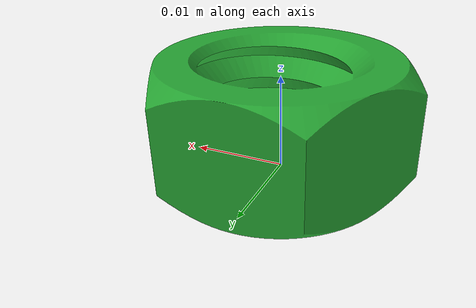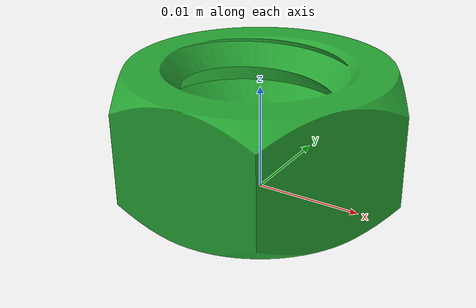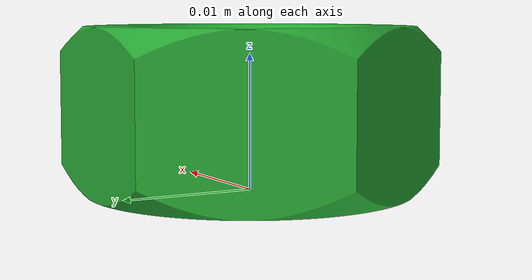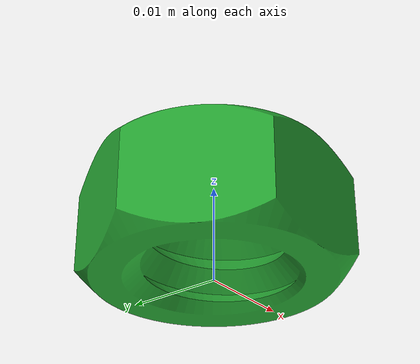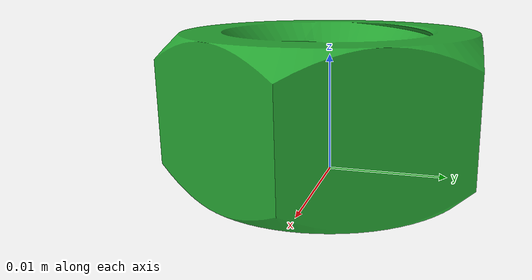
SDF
<?xml version="1.0"?>
<sdf version="1.4">
    <model name="nut_6x9">
        <static>false</static>
        <link name="link">
            <pose>0 0 0 0 0 0</pose>
            <inertial>
                <pose>-4.24534e-05 -6.666e-07 0.0060012716 0 0 0 </pose>
                <mass>3.4719e-06</mass>
                <inertia>
                    <ixx>2.3387120068e-10</ixx>
                    <ixy>-3.17587e-15</ixy>
                    <ixz>-7.21159e-15</ixz>
                    <iyy>2.3407199547e-10</iyy>
                    <iyz>5.8960194e-13</iyz>
                    <izz>3.8825862182e-10</izz>
                </inertia>
            </inertial>

            <visual name="visual">
                <geometry>
                    <mesh>
                        <uri>model://nut_6x9/meshes/nut_6x9.stl</uri>
                    </mesh>
                </geometry>
                <material>
                    <script>
                        <uri>file://media/materials/scripts/gazebo.material</uri>
                        <name>Gazebo/Green</name>
                    </script>
                </material>
            </visual>

            <collision name="collision">
                <geometry>
                    <mesh>
                        <scale>1 1 1</scale>
                        <uri>model://nut_6x9/meshes/nut_6x9.stl</uri>
                    </mesh>
                </geometry>
                <max_contacts>10</max_contacts>
                <surface>
                    <contact>
                        <ode>
                            <mu>0.1</mu>
                            <mu2>0.1</mu2>
                            <max_vel>0.01</max_vel>
                            <min_depth>0.0</min_depth>
                        </ode>
                    </contact>
                    <bounce>
                        <restitution_coefficient>0</restitution_coefficient>
                        <threshold>1e+06</threshold>
                    </bounce>
                    <friction>
                        <torsional>
                            <ode/>
                        </torsional>
                        <ode/>
                    </friction>
                </surface>
            </collision>
        </link>
    </model>
</sdf>
